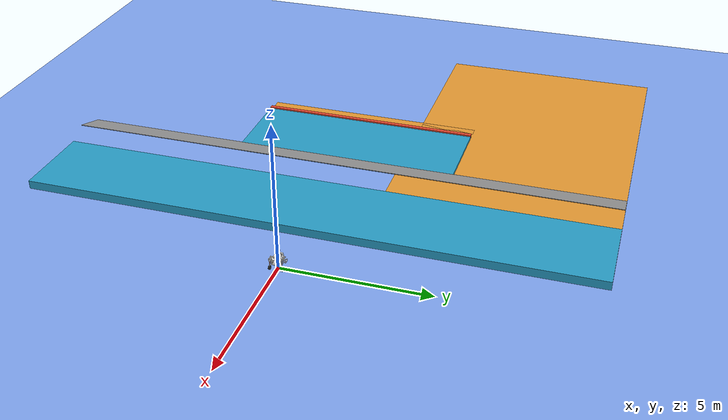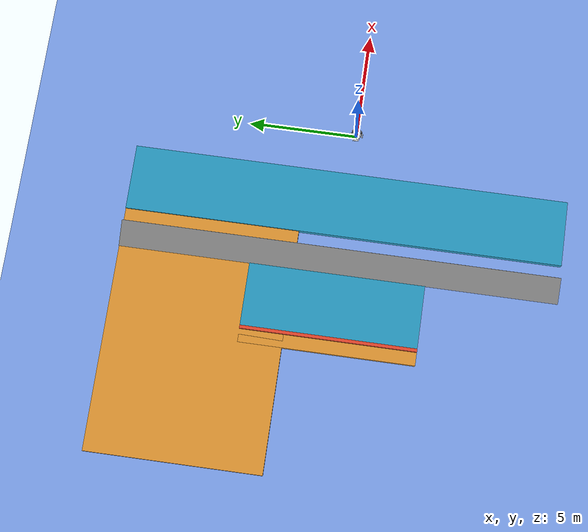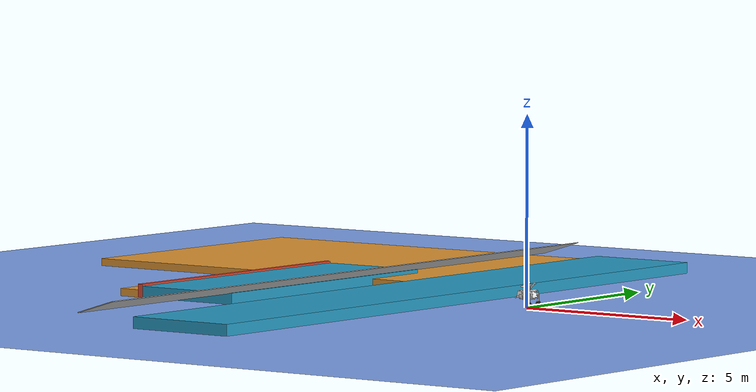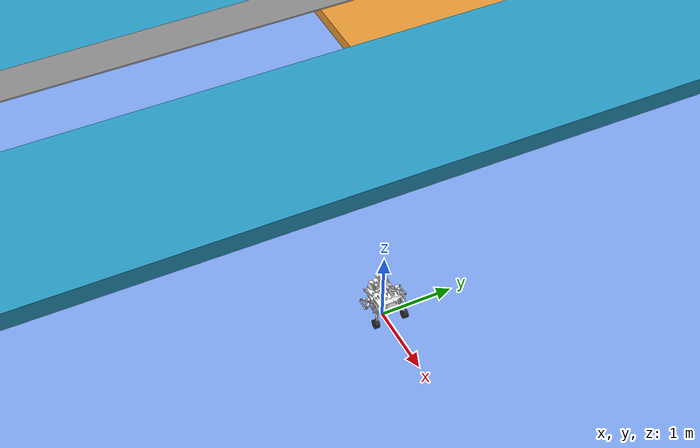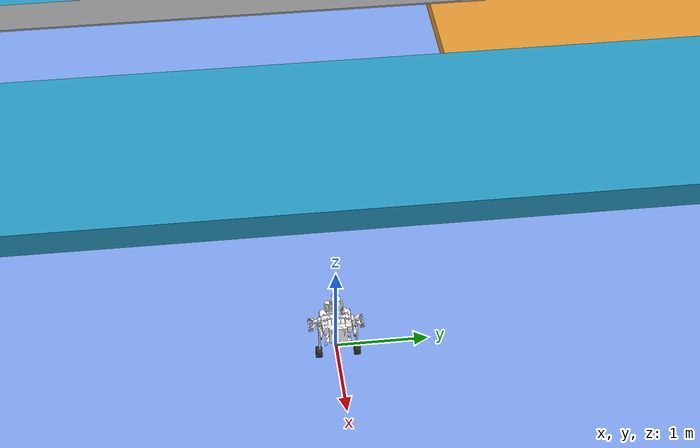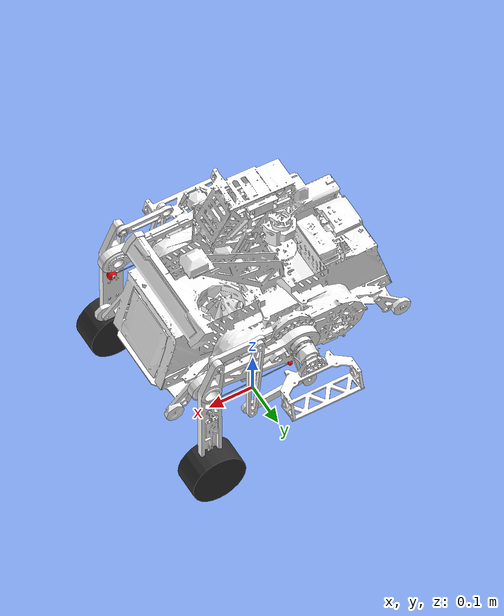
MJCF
<mujoco model="infantry_V2_long_legs_24kg">
  <compiler angle="radian"/>
  <option solver="Newton" iterations="100" tolerance="1e-10"/>

  <default>
    <geom contype="1" conaffinity="2"/>
  </default>

  <asset>
    <mesh name="base_Link_del" file="base_link_del.STL"/>
    <mesh name="rf0_Link" file="rf0_Link.STL" scale="1.20192307692308 1 1"/>
    <mesh name="rf1_Link" file="../../../../../plane/resources/robots/infantry_V4/meshes/rf1_Link.STL" scale="1 1.20192307692308 1"/>
    <mesh name="r_wheel_Link" file="../../../../../plane/resources/robots/infantry_V4/meshes/r_wheel_Link.STL"/>
    <mesh name="lf0_Link" file="lf0_Link.STL" scale="1.20192307692308 1 1"/>
    <mesh name="lf1_Link" file="../../../../../plane/resources/robots/infantry_V4/meshes/lf1_Link.STL" scale="1 1.20192307692308 1"/>
    <mesh name="l_wheel_Link" file="../../../../../plane/resources/robots/infantry_V4/meshes/l_wheel_Link.STL"/>

    <!-- Rear-link meshes are stretched only along their dominant length axes. -->
    <mesh name="r20_Link" file="r20_Link.STL" scale="1 1.20192307692308 1"/>
    <mesh name="r21_Link" file="r21_Link.STL" scale="1.20192307692308 1 1"/>
    <mesh name="r22_Link" file="r22_Link.STL" scale="1 1.20192307692308 1"/>
    <mesh name="r23_Link" file="r23_Link.STL" scale="1.20192307692308 1 1"/>
    <mesh name="l20_Link" file="l20_Link.STL" scale="1 1.20192307692308 1"/>
    <mesh name="l21_Link" file="l21_Link.STL" scale="1.20192307692308 1 1"/>
    <mesh name="l22_Link" file="l22_Link.STL" scale="1 1.20192307692308 1"/>
    <mesh name="l23_Link" file="l23_Link.STL" scale="1.20192307692308 1 1"/>

    <material name="floor_gray"
          rgba="0.65 0.65 0.65 1"
          specular="0.15"
          shininess="0.6"/>

    <texture name="blue_checker_tex"
           type="2d"
           builtin="checker"
           width="512"
           height="512"
           rgb1="0.2 0.4 0.9"
           rgb2="0.8 0.9 1.0"/>

    <material name="blue_checker_mat"
            texture="blue_checker_tex"
            texrepeat="20 20"
            reflectance="0.1"/>
    <hfield name="terrain_hf"
            file="terrain_hfield.png"
            size="3.2 2.4 0.45 0.06"/>
  </asset>

  <worldbody>
    <geom name="floor" type="plane" size="40 40 0.1"
      material="blue_checker_mat"
      contype="2" conaffinity="1"/>

    <geom name="step_20cm"
        type="box"
        pos="-10.0 0.0 0.10"
        size="0.30 4.0 0.10"
        rgba="0.9 0.6 0.2 1"
        contype="2" conaffinity="1"/>

    <geom name="step_20rightcm"
        type="box"
        pos="-10.0 6.0 0.10"
        size="6.0 4.0 0.10"
        rgba="0.9 0.6 0.2 1"
        contype="2" conaffinity="1"/>
    <geom name="step_35cm"
        type="box"
        pos="-9.625 0.0 0.175"
        size="0.075 4.0 0.175"
        rgba="0.92 0.28 0.18 1"
        contype="2" conaffinity="1"/>
    <geom name="platform_30cm"
        type="box"
        pos="-8.05 0.0 0.15"
        size="1.5 4.0 0.15"
        rgba="0.16 0.62 0.78 1"
        contype="2" conaffinity="1"/>

    <geom name="fly_ramp_1"
        type="box"
        pos="-6.11 0.0 0.46"
        euler="0 -0.296706 0"
        size="0.5986 10 0.01"
        rgba="0.6 0.6 0.6 1"
        contype="2" conaffinity="1"/>
    <geom name="landing_box"
        type="box"
        pos="-3.38 0.0 0.15"
        size="1.5 10.0 0.15"
        rgba="0.16 0.62 0.78 1"
        contype="2" conaffinity="1"/>

    <body name="base_Link_del" pos="0 0 0.277" quat="1 0 0 0">
      <freejoint/>
      <inertial
        pos="-0.00406060 0.0008523 0.09714204"
        mass="19.1769726442"
        fullinertia="0.408495848318 0.400513195046 0.518750316883 -0.00198112512871 -0.00938428469973 -0.00243332587586"/>
      <site name="imu_site" pos="0 0 0" size="0.005"/>
      <geom name="base_Link_del_geom" type="mesh" rgba="1 1 1 1" mesh="base_Link_del"
              condim="1" friction="0 0 0"/>

      <body name="rf0_Link" pos="0 -0.1877 0.08725" quat="0.707105 0.707108 0 0">
        <inertial
          pos="0.0664378365385 -0.01655437 -0.00927161"
          mass="1.33798076923"
          fullinertia="0.00248854567308 0.00802464066600 0.0101050493199 -0.000330976678070 -0.000222933616864 0.000132307692308"/>
        <joint name="rf0_Joint" pos="0 0 0" axis="0 0 1" armature="0" damping="0.03" frictionloss="0.015" range="-100 100" actuatorfrcrange="-100 100"/>
        <geom type="mesh" rgba="1 1 1 1" mesh="rf0_Link"/>
        <site name="Right_front_site1" pos="0.113401442308 0 0" size="0.005" rgba="1 0 0 1"/>
        <site name="right_lf0_qitanhuang" pos="0.0186298076923 -0.0534855769231 -0.008" size="0.005" rgba="1 0 0 1"/>
        <body name="rf1_Link" pos="0.21 0 0">
          <inertial
            pos="-0.00283459 -0.0854177764423 0.0068255"
            mass="0.368837259615"
            fullinertia="0.00428805252346 0.000111322115385 0.00436774002346 0.000180432923447 -4.11057692308e-06 4.96082193047e-05"/>
          <joint name="rf1_Joint" pos="0 0 0" axis="0 0 1" armature="0.00" damping="0.03" frictionloss="0.015" limited="true" range="-1.1 0.65" actuatorfrcrange="-100 100"/>
          <geom type="mesh" rgba="1 1 1 1" mesh="rf1_Link"/>
          <site name="Right_front_site2" pos="-0.0193426682692 0.0732090144231 0" size="0.005" rgba="1 0 0 1"/>
          <site name="right_lf1_qitanhuang" pos="0.00600961538462 -0.0552884615385 -0.005" size="0.01" rgba="1 0 0 1"/>
          <body name="r_wheel_Link" pos="0 -0.25 0.016">
            <inertial
              pos="4.3469e-06 -0.00019294 0.019568"
              mass="0.49069"
              fullinertia="0.00033972 0.00034147 0.00058188 0 3e-08 -1.52e-06"/>
            <joint name="r_wheel_Joint" pos="0 0 0" axis="0 0 1" damping="0.002" frictionloss="0.001" actuatorfrcrange="-100 100"/>
            <geom type="cylinder" size="0.06 0.03075" rgba="0.18 0.18 0.18 1"/>
          </body>
        </body>
      </body>

      <body name="lf0_Link" pos="0 0.1877 0.08725" quat="0.707105 -0.707108 0 0">
        <inertial
          pos="0.0665901442308 0.016584 -0.0092702"
          mass="1.3375"
          fullinertia="0.00249063701923 0.00800937575120 0.0100921762320 0.000323536889793 -0.000224334897374 -0.000132536057692"/>
        <joint name="lf0_Joint" pos="0 0 0" axis="0 0 1" armature="0" damping="0.03" frictionloss="0.015" range="-100 100" actuatorfrcrange="-100 100"/>
        <geom type="mesh" rgba="1 1 1 1" mesh="lf0_Link"/>
        <site name="Left_front_site1" pos="0.113401442308 0 0" size="0.005" rgba="1 0 0 1"/>
        <site name="left_lf0_qitanhuang" pos="0.0186298076923 0.0534855769231 -0.008" size="0.005" rgba="1 0 0 1"/>
        <body name="lf1_Link" pos="0.21 0 0">
          <inertial
            pos="-0.0028358 0.0854182692308 0.0068255"
            mass="0.368834134615"
            fullinertia="0.00428805252346 0.000111322115385 0.00436774002346 -0.000180432923447 -4.11057692308e-06 -4.96082193047e-05"/>
          <joint name="lf1_Joint" pos="0 0 0" axis="0 0 1" armature="0.00" damping="0.03" frictionloss="0.015" limited="true" range="-0.65 1.1" actuatorfrcrange="-100 100"/>
          <geom type="mesh" rgba="1 1 1 1" mesh="lf1_Link"/>
          <site name="Left_front_site2" pos="-0.0193426682692 -0.0732090144231 0" size="0.01" rgba="1 0 0 1"/>
          <site name="left_lf1_qitanhuang" pos="0.00600961538462 0.0552884615385 -0.005" size="0.01" rgba="1 0 0 1"/>
          <body name="l_wheel_Link" pos="0 0.25 0.016">
            <inertial
              pos="-4.3477e-06 0.00019294 0.019568"
              mass="0.49069"
              fullinertia="0.00033972 0.00034147 0.00058188 0 -3e-08 1.52e-06"/>
            <joint name="l_wheel_Joint" pos="0 0 0" axis="0 0 1" damping="0.002" frictionloss="0.001" actuatorfrcrange="-100 100"/>
            <geom type="cylinder" size="0.06 0.03075" rgba="0.18 0.18 0.18 1"/>
          </body>
        </body>
      </body>

      <body name="r20_Link" pos="0 -0.1877 0.08725" quat="0.707105 0.707108 0 0">
        <inertial pos="-0.0077129 -0.0529014423077 0.0053168" mass="0.0702319711538"
          fullinertia="0.000153606430284 1.67079324279e-05 0.000169295636432 -1.95081006986e-05 9.92712410095e-08 6.80798605782e-07"/>
        <joint name="r20_Joint" pos="0 0 0" axis="0 0 1" armature="0.00" damping="0.03" frictionloss="0.015" actuatorfrcrange="-100 100"/>
        <geom type="mesh" rgba="1 1 1 1" mesh="r20_Link"/>
        <body name="r21_Link" pos="-0.0195733173077 -0.111698317308 0.01">
          <inertial pos="0.0645913461538 -0.013258 -0.01451" mass="0.0516814903846"
            fullinertia="6.07716618821e-06 0.000128084055996 0.000133438670345 1.83770196653e-05 -2.37964443961e-08 5.27072410344e-08"/>
          <joint name="r21_Link" pos="0 0 0" axis="0 0 1" actuatorfrcrange="-100 100"/>
          <geom type="mesh" rgba="1 1 1 1" mesh="r21_Link"/>
          <body name="r22_Link" pos="0.13296875 -0.0233016826923 0">
            <inertial pos="-0.006381 0.106826923077 -0.0045" mass="0.0791790865385"
              fullinertia="0.000353518625092 9.84901439034e-06 0.000362293024098 2.70994569622e-05 0 0"/>
            <joint name="r22_Joint" pos="0 0 0" axis="0 0 1" actuatorfrcrange="-100 100"/>
            <geom type="mesh" rgba="1 1 1 1" mesh="r22_Link"/>
            <site name="Right_rear_site1" pos="0 0.135 0" size="0.005" rgba="1 1 0 1"/>
            <body name="r23_Link" pos="-0.0216730769231 0.207548076923 0">
              <inertial pos="0.0483004807692 0 -0.014509" mass="0.0131550480769"
                fullinertia="7.45600961538e-07 1.70957815478e-05 1.76576805863e-05 0 0 0"/>
              <joint name="r23_Joint" pos="0 0 0" axis="0 0 1" actuatorfrcrange="-100 100"/>
              <geom type="mesh" rgba="1 1 1 1" mesh="r23_Link"/>
              <site name="Right_rear_site2" pos="0.0965985576923 0 0" size="0.005" rgba="1 1 0 1"/>
            </body>
          </body>
        </body>
      </body>

      <body name="l20_Link" pos="0 0.1877 0.08725" quat="0.707105 -0.707108 0 0">
        <inertial pos="-0.0077129 -0.0529014423077 0.0053168" mass="0.0702319711538"
          fullinertia="8.30543207326e-06 8.89904177716e-05 9.65737551338e-05 -1.76561348912e-05 3.65107893724e-08 -5.14894574575e-08"/>
        <joint name="l20_Joint" pos="0 0 0" axis="0 0 1" armature="0.00" damping="0.03" frictionloss="0.015" actuatorfrcrange="-100 100"/>
        <geom type="mesh" rgba="1 1 1 1" mesh="l20_Link"/>
        <body name="l21_Link" pos="-0.0195733173077 0.111698317308 0.01">
          <inertial pos="0.0668125 0.013582 -0.01451" mass="0.0516814903846"
            fullinertia="5.86034112238e-06 0.000128396727159 0.00013353497357 -1.76561348912e-05 4.38831603034e-08 -4.28392286047e-08"/>
          <joint name="l21_Link" pos="0 0 0" axis="0 0 1" actuatorfrcrange="-100 100"/>
          <geom type="mesh" rgba="1 1 1 1" mesh="l21_Link"/>
          <body name="l22_Link" pos="0.13296875 0.0233016826923 0">
            <inertial pos="-0.006381 -0.106826923077 -0.0045" mass="0.0791790865385"
              fullinertia="0.000353518625092 9.84901439034e-06 0.000362293024098 -2.70994569622e-05 0 0"/>
            <joint name="l22_Joint" pos="0 0 0" axis="0 0 1" actuatorfrcrange="-100 100"/>
            <geom type="mesh" rgba="1 1 1 1" mesh="l22_Link"/>
            <site name="Left_rear_site1" pos="0 -0.135 0" size="0.005" rgba="1 1 0 1"/>
            <body name="l23_Link" pos="-0.0216730769231 -0.207548076923 0">
              <inertial pos="0.0483004807692 0 -0.014509" mass="0.0131550480769"
                fullinertia="7.45600961538e-07 1.70957815478e-05 1.76576805863e-05 0 0 0"/>
              <joint name="l23_Joint" pos="0 0 0" axis="0 0 1" actuatorfrcrange="-100 100"/>
              <geom type="mesh" rgba="1 1 1 1" mesh="l23_Link"/>
              <site name="Left_rear_site2" pos="0.0965985576923 0 0" size="0.005" rgba="1 1 0 1"/>
            </body>
          </body>
        </body>
      </body>
    </body>
  </worldbody>

  <tendon>
    <spatial name="Left_loop1_tendon" width="0.001">
      <site site="left_lf1_qitanhuang"/>
      <site site="left_lf0_qitanhuang"/>
    </spatial>
    <spatial name="Right_loop1_tendon" width="0.001">
      <site site="right_lf1_qitanhuang"/>
      <site site="right_lf0_qitanhuang"/>
    </spatial>
  </tendon>

  <actuator>
    <motor name="act_lf0" joint="lf0_Joint" gear="1"/>
    <motor name="act_lf1" joint="lf1_Joint" gear="1"/>
    <motor name="act_lw" joint="l_wheel_Joint" gear="1"/>
    <motor name="act_rf0" joint="rf0_Joint" gear="1"/>
    <motor name="act_rf1" joint="rf1_Joint" gear="1"/>
    <motor name="act_rw" joint="r_wheel_Joint" gear="1"/>
    <motor name="act_lf20" joint="l20_Joint" gear="1"/>
    <motor name="act_rf20" joint="r20_Joint" gear="1"/>
    <motor name="Left_loop1_motor" tendon="Left_loop1_tendon" gear="1"/>
    <motor name="Right_loop1_motor" tendon="Right_loop1_tendon" gear="1"/>
  </actuator>

  <sensor>
    <framequat name="orientation" objtype="body" objname="base_Link_del"/>
    <gyro name="base_ang_vel" site="imu_site"/>
    <accelerometer name="base_lin_acc" site="imu_site"/>
    <jointpos name="lf0_Joint_p" joint="lf0_Joint"/>
    <jointvel name="lf0_Joint_v" joint="lf0_Joint"/>
    <jointpos name="lf1_Joint_p" joint="lf1_Joint"/>
    <jointvel name="lf1_Joint_v" joint="lf1_Joint"/>
    <jointpos name="l_wheel_Joint_p" joint="l_wheel_Joint"/>
    <jointvel name="l_wheel_Joint_v" joint="l_wheel_Joint"/>
    <jointpos name="rf0_Joint_p" joint="rf0_Joint"/>
    <jointvel name="rf0_Joint_v" joint="rf0_Joint"/>
    <jointpos name="rf1_Joint_p" joint="rf1_Joint"/>
    <jointvel name="rf1_Joint_v" joint="rf1_Joint"/>
    <jointpos name="r_wheel_Joint_p" joint="r_wheel_Joint"/>
    <jointvel name="r_wheel_Joint_v" joint="r_wheel_Joint"/>
  </sensor>

  <equality>
    <connect name="Left_loop1" site1="Left_front_site1" site2="Left_rear_site1" solref="0.00005 1.0" solimp="0.99995 0.9999 0.00001 0.5 2"/>
    <connect name="Left_loop2" site1="Left_front_site2" site2="Left_rear_site2" solref="0.00005 1.0" solimp="0.99995 0.9999 0.00001 0.5 2"/>
    <connect name="Right_loop1" site1="Right_front_site1" site2="Right_rear_site1" solref="0.00005 1.0" solimp="0.99995 0.9999 0.00001 0.5 2"/>
    <connect name="Right_loop2" site1="Right_front_site2" site2="Right_rear_site2" solref="0.00005 1.0" solimp="0.99995 0.9999 0.00001 0.5 2"/>
  </equality>
</mujoco>
